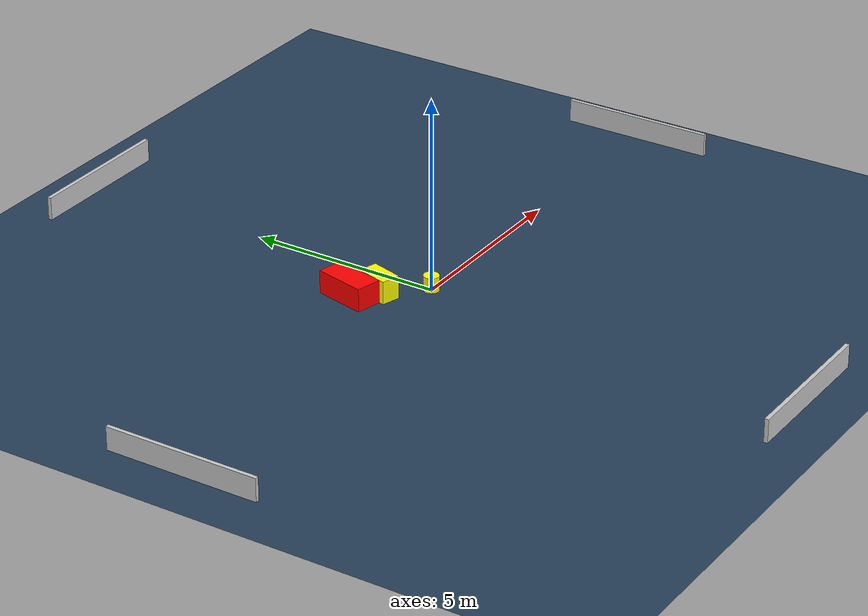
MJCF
<?xml version="1.0" ?>
<mujoco model="generated_environment">
  <option timestep="0.01" integrator="RK4" cone="elliptic"/>
  <default>
    <geom density="1"/>
  </default>
  <asset>
    <texture builtin="gradient" height="3072" name="skybox" rgb1="0.3 0.5 0.7" rgb2="0 0 0" type="skybox" width="512"/>
    <texture builtin="checker" height="300" name="groundplane" rgb1="0.2 0.3 0.4" rgb2="0.1 0.2 0.3" type="2d" width="300"/>
    <material name="groundplane" reflectance="0.2" texrepeat="5 5" texture="groundplane"/>
  </asset>
  <worldbody>
    <light dir="0 0 -1" directional="true" pos="0 0 1.5"/>
    <geom condim="3" friction="0.5 0.005 0.001" material="groundplane" name="floor" pos="0 0 0" size="0 0 0.05" type="plane"/>
    <body name="walls">
      <geom name="wall_1" condim="4" pos="-10.0 0.0 0.3" rgba="0.800000011920929 0.800000011920929 0.800000011920929 1.0" size="0.05 2.0 0.3" type="box"/>
      <geom name="wall_2" condim="4" pos="10.0 0.0 0.3" rgba="0.800000011920929 0.800000011920929 0.800000011920929 1.0" size="0.05 2.0 0.3" type="box"/>
      <geom name="wall_3" condim="4" pos="0.0 -10.0 0.3" rgba="0.800000011920929 0.800000011920929 0.800000011920929 1.0" size="2.0 0.05 0.3" type="box"/>
      <geom name="wall_4" condim="4" pos="0.0 10.0 0.3" rgba="0.800000011920929 0.800000011920929 0.800000011920929 1.0" size="2.0 0.05 0.3" type="box"/>
    </body>
    <body name="robot">
      <joint name="joint_x" type="slide" pos="0 0 0" axis="1 0 0"/>
      <joint name="joint_y" type="slide" pos="0 0 0" axis="0 1 0"/>
      <geom name="robot" type="cylinder" pos="0.0 0.0 0.2" size="0.2 0.2 0.0" mass="5.0" friction="1.0 0.005 0.0001" condim="4" rgba="1.0 1.0 0.0 1.0"/>
    </body>
    <body name="obstacle_1_movable">
      <geom name="obstacle_1_movable" condim="4" pos="-0.8872656635346652 0.9025626182787048 0.3" euler="0 0 73.97037071956694" friction="0.0 0.005 0.001" rgba="1.0 1.0 0.0 1.0" size="0.4209682891008622 0.24746744478173988 0.3" type="box" mass="0.1"/>
      <joint type="free"/>
    </body>
    <body name="obstacle_2_static">
      <geom name="obstacle_2_static" condim="4" pos="-1.377397715871797 1.4305141896868065 0.3" euler="0 0 256.68328716095624" friction="0.0 0.005 0.001" rgba="1.0 0.0 0.0 1.0" size="0.6742302664395864 0.3375071672162717 0.3" type="box"/>
    </body>
  </worldbody>
  <actuator>
    <motor name="actuator_x" joint="joint_x" gear="1" ctrlrange="-1 1"/>
    <motor name="actuator_y" joint="joint_y" gear="1" ctrlrange="-1 1"/>
  </actuator>
</mujoco>
